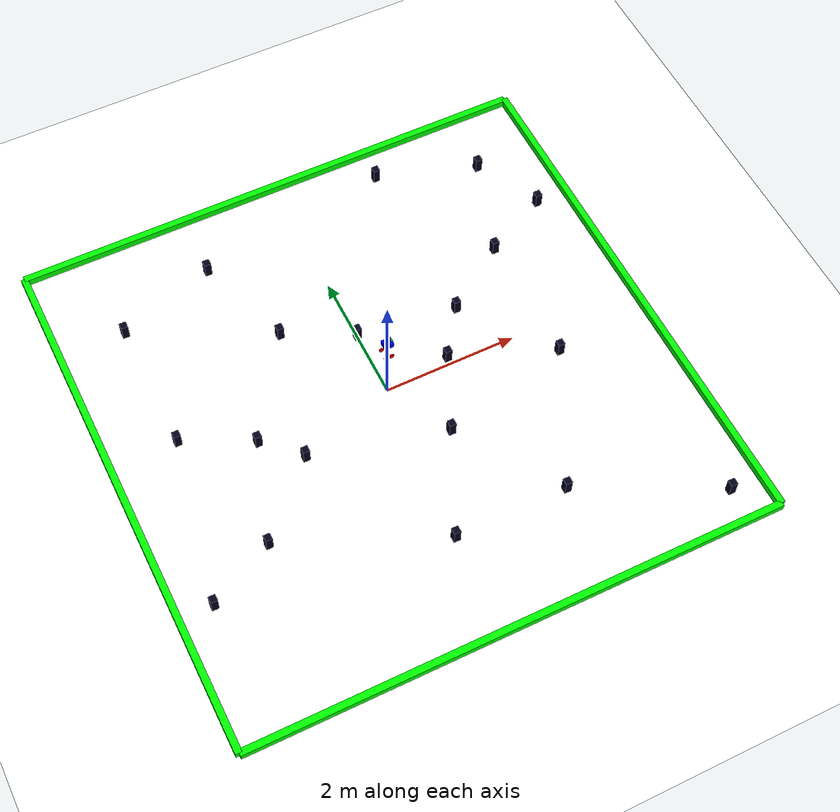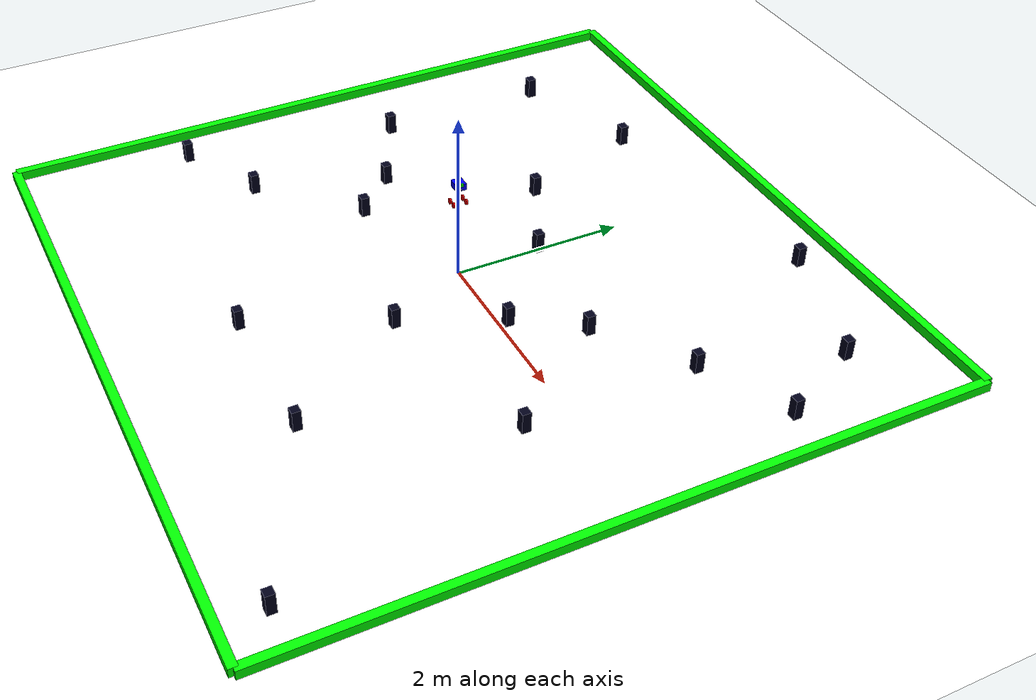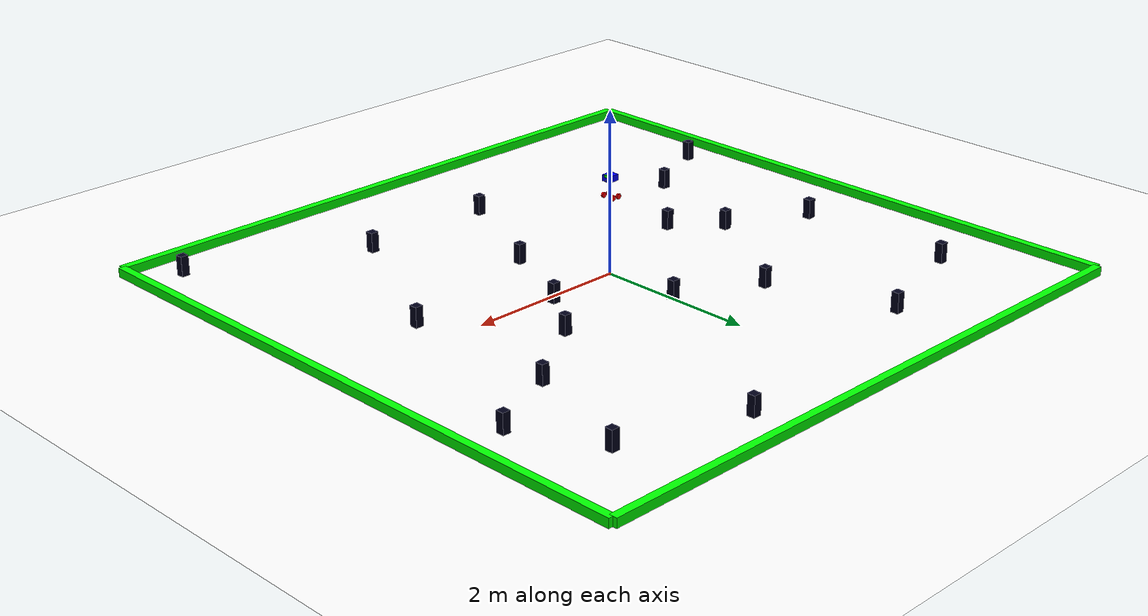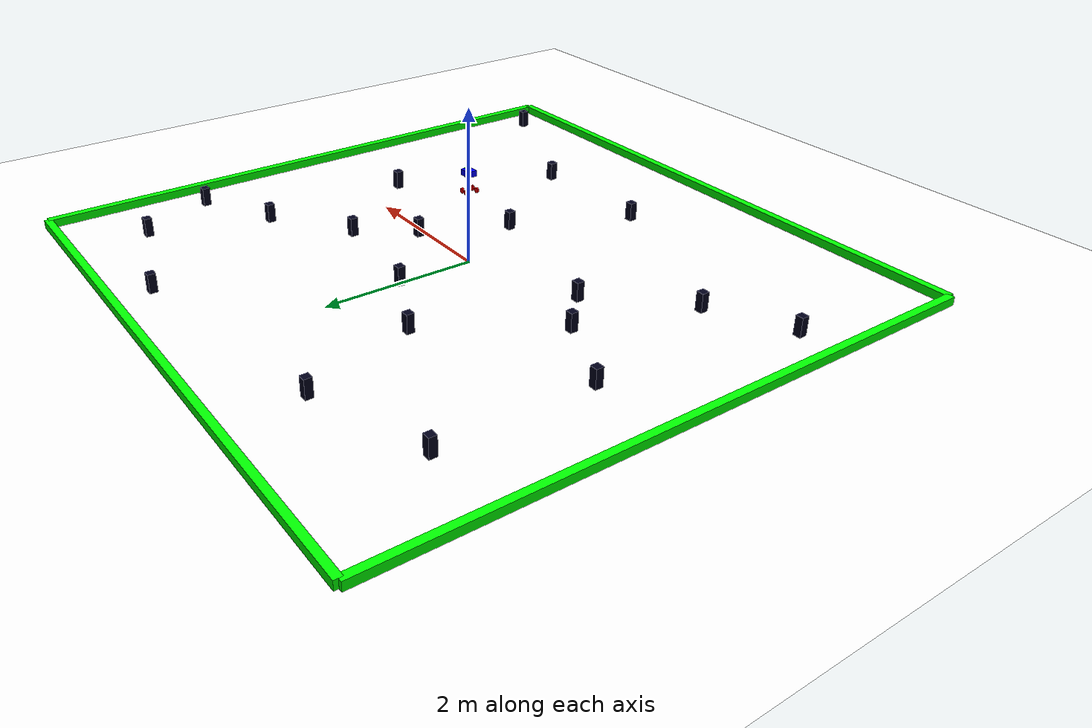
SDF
<sdf version='1.9'>
    <world name='empty'>
      <physics name='1ms' type='ignored'>
        <max_step_size>0.001</max_step_size>
        <real_time_factor>1</real_time_factor>
        <real_time_update_rate>1000</real_time_update_rate>
      </physics>
      <plugin name='gz::sim::systems::Physics' filename='ignition-gazebo-physics-system'/>
      <plugin name='gz::sim::systems::UserCommands' filename='ignition-gazebo-user-commands-system'/>
      <plugin name='gz::sim::systems::SceneBroadcaster' filename='ignition-gazebo-scene-broadcaster-system'/>
      <plugin name='gz::sim::systems::Contact' filename='ignition-gazebo-contact-system'/>
      <plugin name='gz::sim::systems::Sensors' filename='ignition-gazebo-sensors-system'>
        <render_engine>ogre2</render_engine>
      </plugin>

      <gravity>0 0 -9.8</gravity>
      <magnetic_field>6e-06 2.3e-05 -4.2e-05</magnetic_field>
      <atmosphere type='adiabatic'/>
      <scene>
        <ambient>0.4 0.4 0.4 1</ambient>
        <background>0.7 0.7 0.7 1</background>
        <shadows>true</shadows>
      </scene>

      <model name='ground_plane'>
          <static>true</static>
          <link name='ground_plane'>
              <visual name='visual'>
                  <geometry>
                      <plane>
                          <normal>0 0 1</normal>
                          <size>100 100</size>
                      </plane>
                  </geometry>
                  <material>
                      <ambient>1 1 1 1</ambient>
                      <diffuse>1 1 1 1</diffuse>
                      <specular>1 1 1 1</specular>
                  </material>
              </visual>
              <collision name='collision'>
                  <geometry>
                      <plane>
                          <normal>0 0 1</normal>
                          <size>200 200</size>
                      </plane>
                  </geometry>
                  <surface>
                      <friction>
                          <ode/>
                      </friction>
                      <bounce/>
                      <contact/>
                  </surface>
              </collision>

              <inertial>
                  <mass>100</mass>
                  <inertia>
                      <ixx>1</ixx>
                      <ixy>0</ixy>
                      <ixz>0</ixz>
                      <iyy>1</iyy>
                      <iyz>0</iyz>
                      <izz>1</izz>
                  </inertia>
              </inertial>
              <enable_wind>false</enable_wind>
          </link>
          <self_collide>false</self_collide>
      </model>

      <light type="directional" name="sun">
          <cast_shadows>true</cast_shadows>
          <pose>0 0 10 0 0 0</pose>
          <diffuse>0.8 0.8 0.8 1</diffuse>
          <specular>0.2 0.2 0.2 1</specular>
          <attenuation>
              <range>1000</range>
              <constant>0.9</constant>
              <linear>0.01</linear>
              <quadratic>0.001</quadratic>
          </attenuation>
          <direction>-0.5 0.1 -0.9</direction>
      </light>

      <include>
        <name>obstacle1</name>
        <uri>model://worlds/objects/obstacle.sdf</uri>
        <pose>-3.5 -2 0.125 0 0 0</pose>
      </include>

      <include>
        <name>obstacle2</name>
        <uri>model://worlds/objects/obstacle.sdf</uri>
        <pose>3.5 2 0.125 0 0 0</pose>
      </include>

      <include>
        <name>obstacle3</name>
        <uri>model://worlds/objects/obstacle.sdf</uri>
        <pose>-1.5 -0.5 0.125 0 0 0</pose>
      </include>

      <include>
        <name>obstacle4</name>
        <uri>model://worlds/objects/obstacle.sdf</uri>
        <pose>1.5 0.8 0.125 0 0 0</pose>
      </include>

      <include>
        <name>obstacle5</name>
        <uri>model://worlds/objects/obstacle.sdf</uri>
        <pose>-3 2.5 0.125 0 0 0</pose>
      </include>

      <include>
        <name>obstacle6</name>
        <uri>model://worlds/objects/obstacle.sdf</uri>
        <pose>2.5 1.5 0.125 0 0 0</pose>
      </include>

      <include>
        <name>obstacle7</name>
        <uri>model://worlds/objects/obstacle.sdf</uri>
        <pose>-1.5 3 0.125 0 0 0</pose>
      </include>

      <include>
        <name>obstacle8</name>
        <uri>model://worlds/objects/obstacle.sdf</uri>
        <pose>0 1 0.125 0 0 0</pose>
      </include>

      <include>
        <name>obstacle9</name>
        <uri>model://worlds/objects/obstacle.sdf</uri>
        <pose>3 3 0.125 0 0 0</pose>
      </include>

      <include>
        <name>obstacle10</name>
        <uri>model://worlds/objects/obstacle.sdf</uri>
        <pose>-2 0 0.125 0 0 0</pose>
      </include>

      <include>
        <name>obstacle11</name>
        <uri>model://worlds/objects/obstacle.sdf</uri>
        <pose>1.5 -2.5 0.125 0 0 0</pose>
      </include>

      <include>
        <name>obstacle12</name>
        <uri>model://worlds/objects/obstacle.sdf</uri>
        <pose>-3 0.5 0.125 0 0 0</pose>
      </include>

      <include>
        <name>obstacle13</name>
        <uri>model://worlds/objects/obstacle.sdf</uri>
        <pose>1.5 3.5 0.125 0 0 0</pose>
      </include>

      <include>
        <name>obstacle14</name>
        <uri>model://worlds/objects/obstacle.sdf</uri>
        <pose>-2.5 -1.5 0.125 0 0 0</pose>
      </include>

      <include>
        <name>obstacle15</name>
        <uri>model://worlds/objects/obstacle.sdf</uri>
        <pose>0.5 -1 0.125 0 0 0</pose>
      </include>

      <include>
        <name>obstacle16</name>
        <uri>model://worlds/objects/obstacle.sdf</uri>
        <pose>3.5 -3.5 0.125 0 0 0</pose>
      </include>

      <include>
        <name>obstacle17</name>
        <uri>model://worlds/objects/obstacle.sdf</uri>
        <pose>-1 1.5 0.125 0 0 0</pose>
      </include>

      <include>
        <name>obstacle18</name>
        <uri>model://worlds/objects/obstacle.sdf</uri>
        <pose>2.5 -0.5 0.125 0 0 0</pose>
      </include>

      <include>
        <name>obstacle19</name>
        <uri>model://worlds/objects/obstacle.sdf</uri>
        <pose>-0.2 -2.5 0.125 0 0 0</pose>
      </include>

      <include>
        <name>obstacle20</name>
        <uri>model://worlds/objects/obstacle.sdf</uri>
        <pose>1 0.1 0.125 0 0 0</pose>
      </include>

      <include>
        <name>border1</name>
        <uri>model://worlds/objects/borders.sdf</uri>
        <pose>0 4 0 0 0 0</pose>
      </include>

      <include>
        <name>border2</name>
        <uri>model://worlds/objects/borders.sdf</uri>
        <pose>0 -4 0 0 0 0</pose>
      </include>

      <include>
        <name>border3</name>
        <uri>model://worlds/objects/borders.sdf</uri>
        <pose>4 0 0 0 0 1.57</pose>
      </include>

      <include>
        <name>border4</name>
        <uri>model://worlds/objects/borders.sdf</uri>
        <pose>-4 0 0 0 0 1.57</pose>
      </include>

      <include>
          <uri>model://models/robot.sdf</uri>
      </include>

    </world>
  </sdf>

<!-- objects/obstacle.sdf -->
<sdf version="1.9">
    <model name="obstacle">
        <link name='obstacle'>
            <visual name='visual'>
                <geometry>
                    <box>
                        <size>0.1 0.1 0.25</size>
                    </box>
                </geometry>
                <material>
                    <ambient>0.0 0.0 0.1 1</ambient>
                    <diffuse>0.0 0.0 0.1 1</diffuse>
                    <specular>0.0 0.0 0.1 1</specular>
                </material>
            </visual>
            <collision name='collision'>
                <geometry>
                    <box>
                        <size>0.1 0.1 0.25</size>
                    </box>
                </geometry>
            </collision>
        </link>
    </model>
</sdf>

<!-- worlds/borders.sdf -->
<sdf version="1.6">
    <model name="border">
        <static>true</static>
        <link name='border'>
            <visual name='visual'>
                <geometry>
                    <box>
                        <size>8 0.1 0.2</size>
                    </box>
                </geometry>
                <material>
                    <ambient>0.0 1.0 0.0 1</ambient>
                    <diffuse>0.0 1.0 0.0 1</diffuse>
                    <specular>0.0 1.0 0.0 1</specular>
                </material>
            </visual>
            <collision name='collision'>
                <geometry>
                    <box>
                        <size>8 0.1 0.2</size>
                    </box>
                </geometry>
            </collision>
        </link>
    </model>
</sdf>

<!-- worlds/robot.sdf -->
<sdf version="1.6">
<model name='adeept_awr' canonical_link='chassis'>
    <pose>0 0 1 0 0 0</pose>
        <link name='chassis'>
        <pose relative_to='__model__'>0 0 0.2 0 0 0</pose>

        <inertial>
            <mass>2</mass>
            <inertia>
                <ixx>0.000303125</ixx>
                <ixy>0</ixy>
                <ixz>0</ixz>
                <iyy>0.000359375</iyy>
                <iyz>0</iyz>
                <izz>0.000542708</izz>
            </inertia>
        </inertial>

        <visual name='visual'>
            <geometry>
                <box>
                    <size>0.14 0.12 0.075</size>
                </box>
            </geometry>
            <material>
                <ambient>0.0 0.0 1.0 1</ambient>
                <diffuse>0.0 0.0 1.0 1</diffuse>
                <specular>0.0 0.0 1.0 1</specular>
            </material>
        </visual>
        <collision name='collision'>
            <geometry>
                <box>
                    <size>0.14 0.12 0.075</size>
                </box>
            </geometry>
        </collision>
        </link>

        <link name='camera'>
            <pose relative_to='chassis'>0.065 0 0.03 0 0 0</pose>
            <inertial>
                <mass>0.01</mass>
                <inertia>
                    <ixx>3.4725e-06</ixx>
                    <ixy>0</ixy>
                    <ixz>0</ixz>
                    <iyy>4.21875e-06</iyy>
                    <iyz>0</iyz>
                    <izz>5.385e-06</izz>
                </inertia>
            </inertial>
            <visual name='visual'>
                <geometry>
                    <box>
                        <size>0.02 0.045 0.03</size>
                    </box>
                </geometry>
                <material>
                    <ambient>0.0 1.0 0.0 1</ambient>
                    <diffuse>0.0 1.0 0.0 1</diffuse>
                    <specular>0.0 1.0 0.0 1</specular>
                </material>
            </visual>
            <collision name='collision'>
                <geometry>
                    <box>
                        <size>0.02 0.045 0.03</size>
                    </box>
                </geometry>
            </collision>

            <sensor name='camera' type='camera'>
                <pose>0 0 0 0 0 0</pose>
                <topic>simulator_camera</topic>
                <update_rate>30</update_rate>
                <camera name='__default__'>
                    <horizontal_fov>1.0469999999999999</horizontal_fov>
                    <image>
                        <width>820</width>
                        <height>540</height>
                        <format>RGB_INT8</format>
                    </image>
                    <clip>
                        <near>0.01</near>
                        <far>100</far>
                    </clip>
                    <visibility_mask>4294967295</visibility_mask>
                    <lens>
                        <type>stereographic</type>
                        <scale_to_hfov>true</scale_to_hfov>
                        <cutoff_angle>1.5708</cutoff_angle>
                        <env_texture_size>256</env_texture_size>
                    </lens>
                </camera>
            </sensor>
        </link>

        <joint name='camera_servo_joint' type='revolute'>
            <pose relative_to='chassis'>0 0 0.05 0 0 0</pose>
            <parent>chassis</parent>
            <child>camera</child>
            <axis>
                <xyz>0 1 0</xyz>
                <limit>
                    <lower>-1.57076</lower>
                    <upper>0.1745</upper>
                </limit>
                <effort>
                    <min>-10</min>
                    <max>10</max>
                </effort>
            </axis>
        </joint>

        <plugin name="ignition::gazebo::systems::JointController" filename="libignition-gazebo-joint-controller-system.so">
            <joint_name>camera_servo_joint</joint_name>
        </plugin>

          <link name='ultrasonic'>
            <pose relative_to='chassis'>0.07 0 -0.02 0 0 0</pose>
            <inertial>
                <mass>0.05</mass>
                <inertia>
                    <ixx>8.3333e-09</ixx>
                    <iyy>8.3333e-09</iyy>
                    <izz>8.3333e-09</izz>
                  </inertia>
            </inertial>
            <visual name='visual'>
                <geometry>
                  <box>
                    <size>0.01 0.01 0.01</size>
                  </box>
                </geometry>
                <material>
                    <ambient>0.9 0.9 0.9 1</ambient>
                    <diffuse>0.9 0.9 0.9 1</diffuse>
                    <specular>0.9 0.9 0.9 1</specular>
                </material>
              </visual>
            <collision name='collision'>
              <geometry>
                <box>
                  <size>0.01 0.01 0.01</size>
                </box>
              </geometry>
            </collision>

            <sensor name='gpu_lidar' type='gpu_lidar'>
              <pose relative_to="ultrasonic">0 0 0 0 0 0</pose>
              <topic>simulator_ultrasonic</topic>
              <update_rate>20</update_rate>
              <lidar>
                <scan>
                  <horizontal>
                    <samples>3</samples>
                    <resolution>1</resolution>
                    <min_angle>-0.1308</min_angle>
                    <max_angle>0.1308</max_angle>
                  </horizontal>
                  <vertical>
                    <samples>1</samples>
                    <resolution>1</resolution>
                    <min_angle>0</min_angle>
                    <max_angle>0</max_angle>
                  </vertical>
                </scan>
                <range>
                  <min>0.08</min>
                  <max>10</max>
                  <resolution>0.01</resolution>
                </range>
                <noise>
                  <type>none</type>
                  <mean>0</mean>
                  <stddev>0</stddev>
                </noise>
                <visibility_mask>4294967295</visibility_mask>
              </lidar>
            </sensor>
            <enable_wind>false</enable_wind>
          </link>

          <joint name='ultrasonic_joint' type='fixed'>
            <pose relative_to="ultrasonic"/>
            <parent>chassis</parent>
            <child>ultrasonic</child>
          </joint>

        <include>
            <name>left_front_wheel</name>
            <uri>/home/daniel/ros2_ws/src/gazebo_simulator_nodes/worlds/wheel.sdf</uri>
            <pose relative_to="chassis">0.03 0.075 -0.025 -1.5707 0 0</pose>
        </include>

        <joint name='left_front_wheel_joint' type='revolute'>
            <pose relative_to='left_front_wheel'/>
            <parent>chassis</parent>
            <child>left_front_wheel::wheel</child>
            <axis>
                <xyz>0 0 1</xyz>
                <limit>
                    <lower>-1.79769e+308</lower>
                    <upper>1.79769e+308</upper>
                </limit>
            </axis>
        </joint>

        <include>
            <name>right_front_wheel</name>
            <uri>/home/daniel/ros2_ws/src/gazebo_simulator_nodes/worlds/wheel.sdf</uri>
            <pose relative_to="chassis">0.03 -0.075 -0.025 -1.5707 0 0</pose>
        </include>

        <joint name='right_front_wheel_joint' type='revolute'>
            <pose relative_to='right_front_wheel'/>
            <parent>chassis</parent>
            <child>right_front_wheel::wheel</child>
            <axis>
                <xyz>0 0 1</xyz>
                <limit>
                    <lower>-1.79769e+308</lower>
                    <upper>1.79769e+308</upper>
                </limit>
            </axis>
        </joint>

        <include>
            <name>left_rear_wheel</name>
            <uri>/home/daniel/ros2_ws/src/gazebo_simulator_nodes/worlds/wheel.sdf</uri>
            <pose relative_to="chassis">-0.055 0.075 -0.025 -1.5707 0 0</pose>
        </include>

        <joint name='left_rear_wheel_joint' type='revolute'>
            <pose relative_to='left_rear_wheel'/>
            <parent>chassis</parent>
            <child>left_rear_wheel::wheel</child>
            <axis>
                <xyz>0 0 1</xyz>
                <limit>
                    <lower>-1.79769e+308</lower>
                    <upper>1.79769e+308</upper>
                </limit>
            </axis>
        </joint>

        <include>
            <name>right_rear_wheel</name>
            <uri>/home/daniel/ros2_ws/src/gazebo_simulator_nodes/worlds/wheel.sdf</uri>
            <pose relative_to="chassis">-0.055 -0.075 -0.025 -1.5707 0 0</pose>
        </include>

        <joint name='right_rear_wheel_joint' type='revolute'>
            <pose relative_to='right_rear_wheel'/>
            <parent>chassis</parent>
            <child>right_rear_wheel::wheel</child>
            <axis>
                <xyz>0 0 1</xyz>
                <limit>
                    <lower>-1.79769e+308</lower>
                    <upper>1.79769e+308</upper>
                </limit>
            </axis>
        </joint>

    <plugin name='ignition::gazebo::systems::DiffDrive' filename='libignition-gazebo-diff-drive-system.so'>
        <left_joint>left_front_wheel_joint</left_joint>
        <right_joint>right_front_wheel_joint</right_joint>
        <wheel_separation>0.145</wheel_separation>
        <wheel_radius>0.0325</wheel_radius>
        <odom_publish_frequency>1</odom_publish_frequency>
    </plugin>

    <plugin name='ignition::gazebo::systems::DiffDrive' filename='libignition-gazebo-diff-drive-system.so'>
        <left_joint>left_rear_wheel_joint</left_joint>
        <right_joint>right_rear_wheel_joint</right_joint>
        <wheel_separation>0.145</wheel_separation>
        <wheel_radius>0.0325</wheel_radius>
        <odom_publish_frequency>1</odom_publish_frequency>
    </plugin>

</model>
</sdf>

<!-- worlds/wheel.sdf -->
<!-- Generic Wheel -->

<sdf version="1.6">
    <model name="wheel">
        <link name="wheel">
            <inertial>
                <mass>0.1</mass>
                <inertia>
                    <ixx>2.60416667e-06</ixx>
                    <ixy>0</ixy>
                    <ixz>0</ixz>
                    <iyy>2.60416667e-06</iyy>
                    <iyz>0</iyz>
                    <izz>8.68055556e-07</izz>
                </inertia>
            </inertial>
            <visual name='visual'>
                <geometry>
                    <cylinder>
                        <radius>0.0325</radius>
                        <length>0.02</length>
                    </cylinder>
                </geometry>
                <material>
                    <ambient>1.0 0.0 0.0 1</ambient>
                    <diffuse>1.0 0.0 0.0 1</diffuse>
                    <specular>1.0 0.0 0.0 1</specular>
                </material>
            </visual>
            <collision name='collision'>
                <geometry>
                    <cylinder>
                        <radius>0.035</radius>
                        <length>0.02</length>
                    </cylinder>
                </geometry>
            </collision>
        </link>
    </model>
</sdf>
